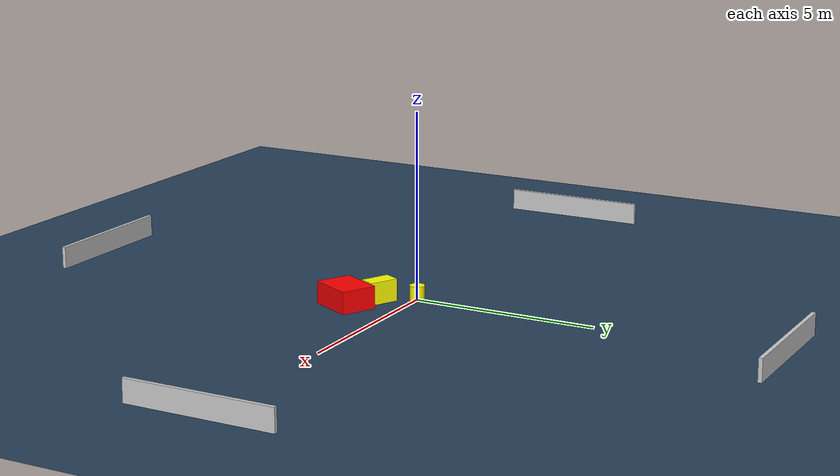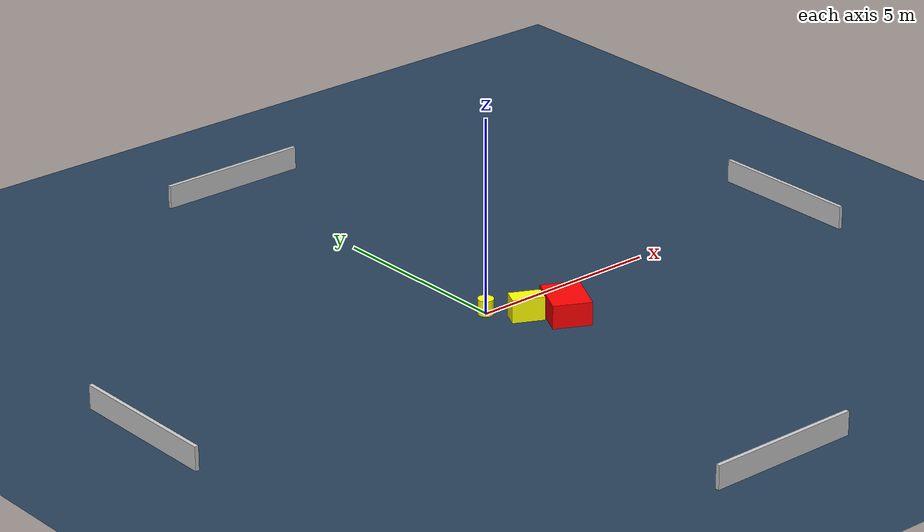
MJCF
<?xml version="1.0" ?>
<mujoco model="generated_environment">
  <option timestep="0.01" integrator="RK4" cone="elliptic"/>
  <default>
    <geom density="1"/>
  </default>
  <asset>
    <texture builtin="gradient" height="3072" name="skybox" rgb1="0.3 0.5 0.7" rgb2="0 0 0" type="skybox" width="512"/>
    <texture builtin="checker" height="300" name="groundplane" rgb1="0.2 0.3 0.4" rgb2="0.1 0.2 0.3" type="2d" width="300"/>
    <material name="groundplane" reflectance="0.2" texrepeat="5 5" texture="groundplane"/>
  </asset>
  <worldbody>
    <light dir="0 0 -1" directional="true" pos="0 0 1.5"/>
    <geom condim="3" friction="0.5 0.005 0.001" material="groundplane" name="floor" pos="0 0 0" size="0 0 0.05" type="plane"/>
    <body name="walls">
      <geom name="wall_1" condim="4" pos="-10.0 0.0 0.3" rgba="0.800000011920929 0.800000011920929 0.800000011920929 1.0" size="0.05 2.0 0.3" type="box"/>
      <geom name="wall_2" condim="4" pos="10.0 0.0 0.3" rgba="0.800000011920929 0.800000011920929 0.800000011920929 1.0" size="0.05 2.0 0.3" type="box"/>
      <geom name="wall_3" condim="4" pos="0.0 -10.0 0.3" rgba="0.800000011920929 0.800000011920929 0.800000011920929 1.0" size="2.0 0.05 0.3" type="box"/>
      <geom name="wall_4" condim="4" pos="0.0 10.0 0.3" rgba="0.800000011920929 0.800000011920929 0.800000011920929 1.0" size="2.0 0.05 0.3" type="box"/>
    </body>
    <body name="robot">
      <joint name="joint_x" type="slide" pos="0 0 0" axis="1 0 0"/>
      <joint name="joint_y" type="slide" pos="0 0 0" axis="0 1 0"/>
      <geom name="robot" type="cylinder" pos="0.0 0.0 0.2" size="0.2 0.2 0.0" mass="5.0" friction="1.0 0.005 0.0001" condim="4" rgba="1.0 1.0 0.0 1.0"/>
    </body>
    <body name="obstacle_1_movable">
      <geom name="obstacle_1_movable" condim="4" pos="0.5756450168702678 -0.8071710430333635 0.3" euler="0 0 333.9272256262444" friction="0.0 0.005 0.001" rgba="1.0 1.0 0.0 1.0" size="0.403551370066747 0.2251144378996129 0.3" type="box" mass="0.1"/>
      <joint type="free"/>
    </body>
    <body name="obstacle_2_static">
      <geom name="obstacle_2_static" condim="4" pos="1.345508612498447 -1.3623587528986891 0.3" euler="0 0 332.9152237856007" friction="0.0 0.005 0.001" rgba="1.0 0.0 0.0 1.0" size="0.48885289030587087 0.6175150893945347 0.3" type="box"/>
    </body>
  </worldbody>
  <actuator>
    <motor name="actuator_x" joint="joint_x" gear="1" ctrlrange="-1 1"/>
    <motor name="actuator_y" joint="joint_y" gear="1" ctrlrange="-1 1"/>
  </actuator>
</mujoco>
